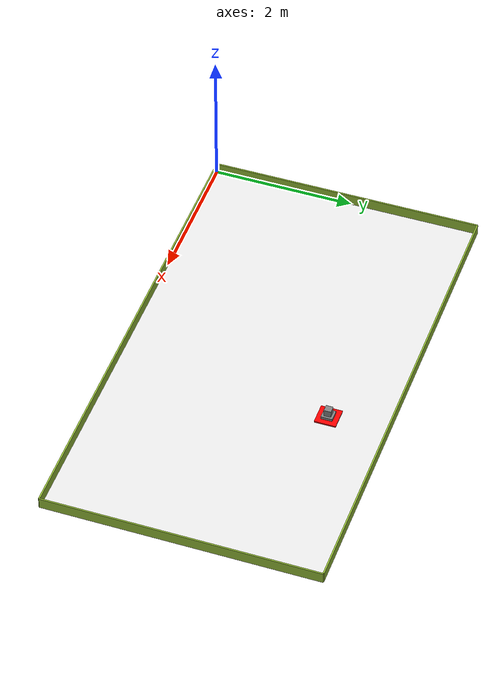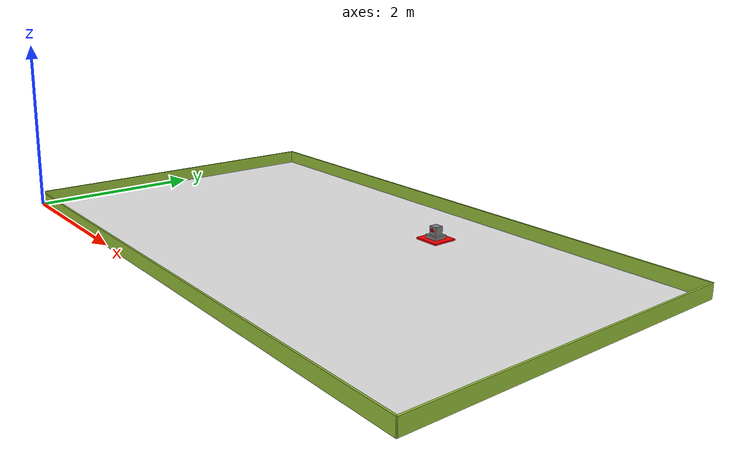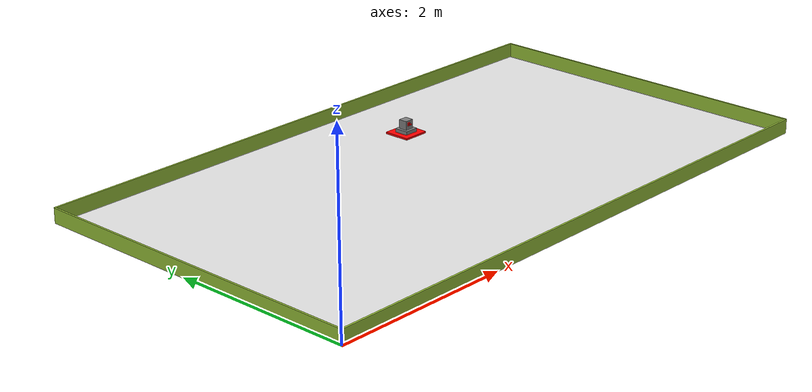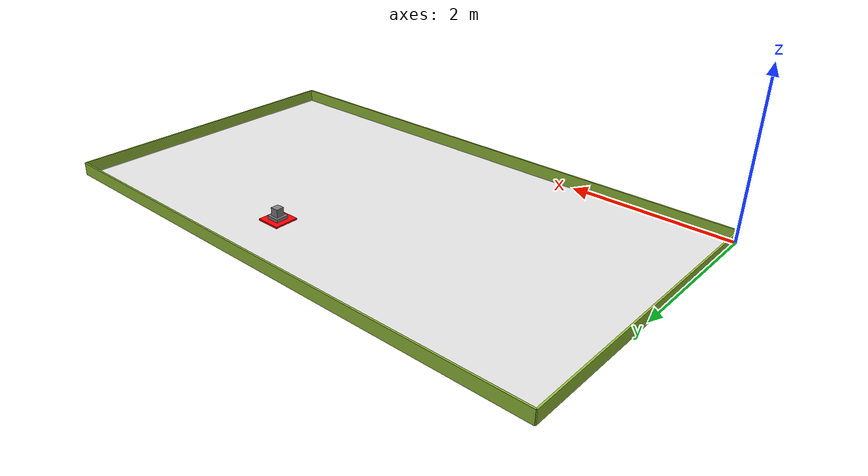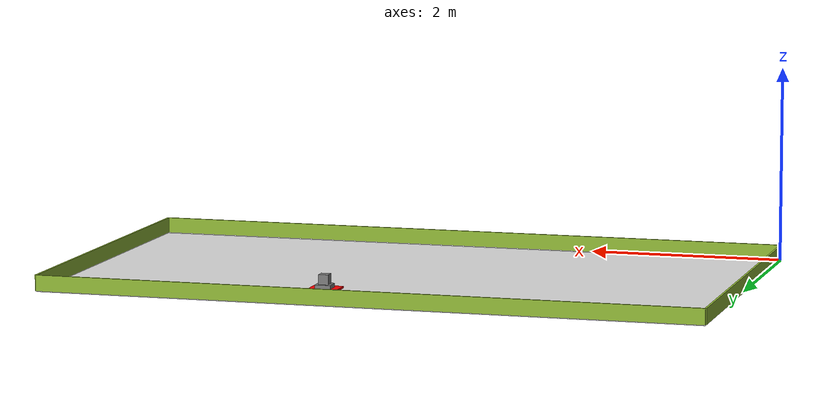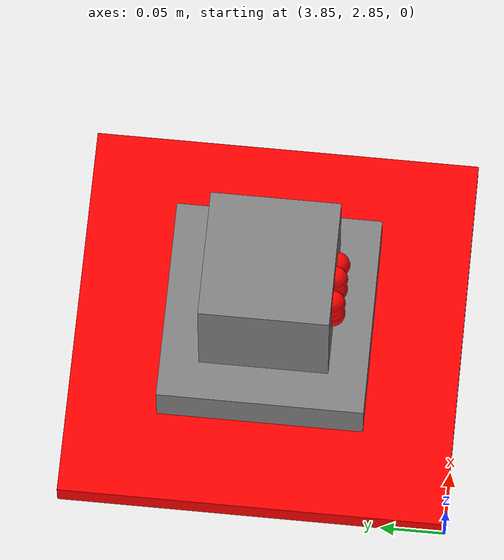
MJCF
<mujoco model="WireHarness1Mover">
  <statistic center="0 0 .3" extent="1"/>
  <visual>
    <global elevation="-30"/>
  </visual>

  <compiler autolimits="true"/>
  <size njmax="1000" nconmax="500"/>

  <option gravity="0 0 -9.81"/>

  <!-- Factor to reality: 150 mm in reality is 0.3 in Mujoco: 1mm = 0.002 -->

  <worldbody>
    <!-- Light source and ground plane -->
    <light diffuse=".5 .5 .5" pos="0 0 30" dir="0 0 -1"/>
    <geom type="plane" size="3.36 1.92 0.1" pos="3.36 1.92 0" rgba="0.9 0.9 0.9 1" name="ground"/>

    <!-- Boundaries -->
    <geom type="box" size=".01 1.92 0.08" pos="6.72 1.92 0.08" rgba="0.59 0.75 0.22 1" name="right_boundary"/>
    <geom type="box" size="3.36 0.01 0.08" pos="3.36 3.84 0.08" rgba="0.59 0.75 0.22 1" name="upper_boundary"/>
    <geom type="box" size="3.36 0.01 0.08" pos="3.36 0 0.08" rgba="0.59 0.75 0.22 1" name="lower_boundary"/>
    <geom type="box" size="0.01 1.92 0.08" pos="0 1.92 0.08" rgba="0.59 0.75 0.22 1" name="left_boundary"/>

    <!-- Platforms 1 - KS_MIKO_17RT -->
    <body name="platform1" pos="4 3 0.01">
      <joint name="slide_joint1x" type="slide" axis="1 0 0" damping=".1"/>
      <joint name="slide_joint1y" type="slide" axis="0 1 0" damping=".1"/>
      <!-- Mover -->
      <geom type="box" size="0.15 0.15 0.01" rgba="1 0 0 1" name="mover1"/>                 <!-- Red platform-->
      <site name="platform1_site" pos="0 0 0.01" type="sphere" size="0.01" rgba="0 0 1 1"/>
      <!-- Plate under the module -->
      <body pos="0 0 0.03" euler="0 0 0" name="plat1">
        <geom type="box" size="0.08 .08 0.02" rgba="0.5 0.5 0.5 1" name="plate1"/>
      </body>
      <body name="mod1" pos="0 0 0.1" euler="0 0 0">                                        <!-- Module/ Box -->
        <site name="marker_p1" pos="0 0 0" size="0.01"/>
        <joint name="turn1" type="hinge" axis="0 0 1"/>
        <geom type="box" size="0.05 0.05 0.05" rgba="0.5 0.5 0.5 1" name="module1"/>
        <body name="p1cav1" pos="0 -0.05 0" euler="0 0 0">
          <geom type="sphere" size="0.01" rgba="1 0 0 1" name="mod1_cav1"/>
          <site name="markerp1c1" pos="0 0 0" size="0.01"/>
        </body>
        <body name="p1cav2" pos="-0.02 -0.05 0" euler="0 0 0">
          <geom type="sphere" size="0.01" rgba="1 0 0 1" name="mod1_cav2"/>
          <site name="markerp1c2" pos="0 0 0" size="0.01"/>
        </body>
        <body name="p1cav3" pos="0.02 -0.05 0" euler="0 0 0">
          <geom type="sphere" size="0.01" rgba="1 0 0 1" name="mod1_cav3"/>
          <site name="markerp1c3" pos="0 0 0" size="0.01"/>
        </body>
        <body name="p1cav4" pos="0 -0.05 0.02" euler="0 0 0">
          <geom type="sphere" size="0.01" rgba="1 0 0 1" name="mod1_cav4"/>
          <site name="markerp1c4" pos="0 0 0" size="0.01"/>
        </body>
        <body name="p1cav5" pos="-0.02 -0.05 0.02" euler="0 0 0">
          <geom type="sphere" size="0.01" rgba="1 0 0 1" name="mod1_cav5"/>
          <site name="markerp1c5" pos="0 0 0" size="0.01"/>
        </body>
      </body>
    </body>

  </worldbody>

  <sensor>
    <force name="force_p1" site="marker_p1"/>
    <force name="force_p1cav1" site="markerp1c1"/>
  </sensor>

  <actuator>
    <!-- Actuators for moving the platform -->
    <motor joint="slide_joint1x" ctrlrange="-1 1" gear="10"/>
    <motor joint="slide_joint1y" ctrlrange="-1 1" gear="10"/>
  </actuator>

</mujoco>
